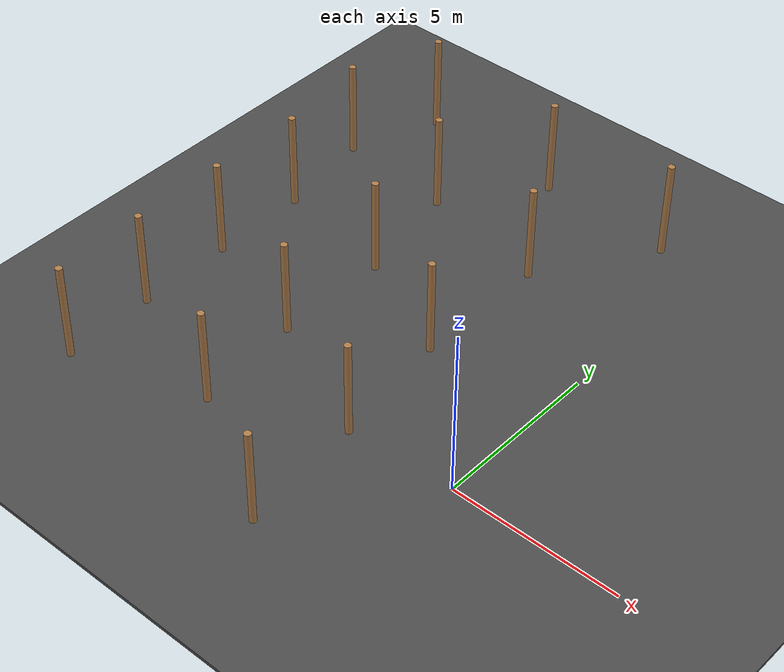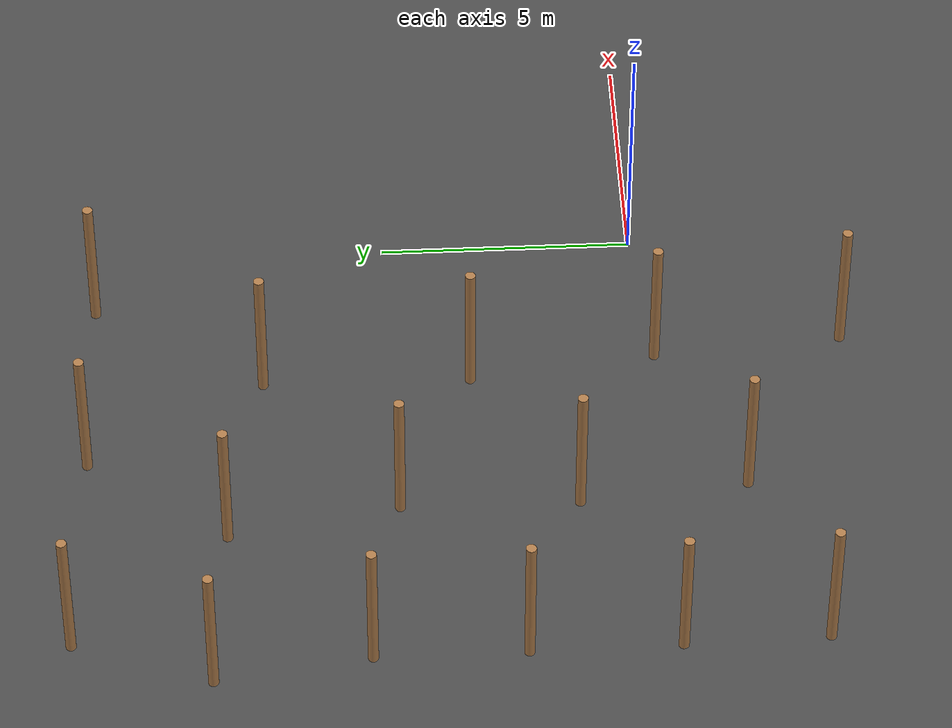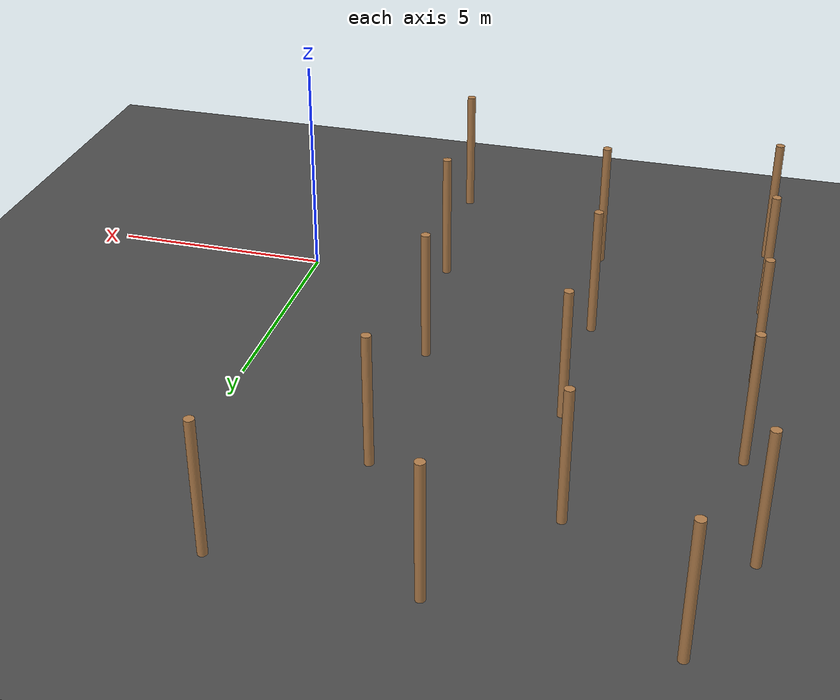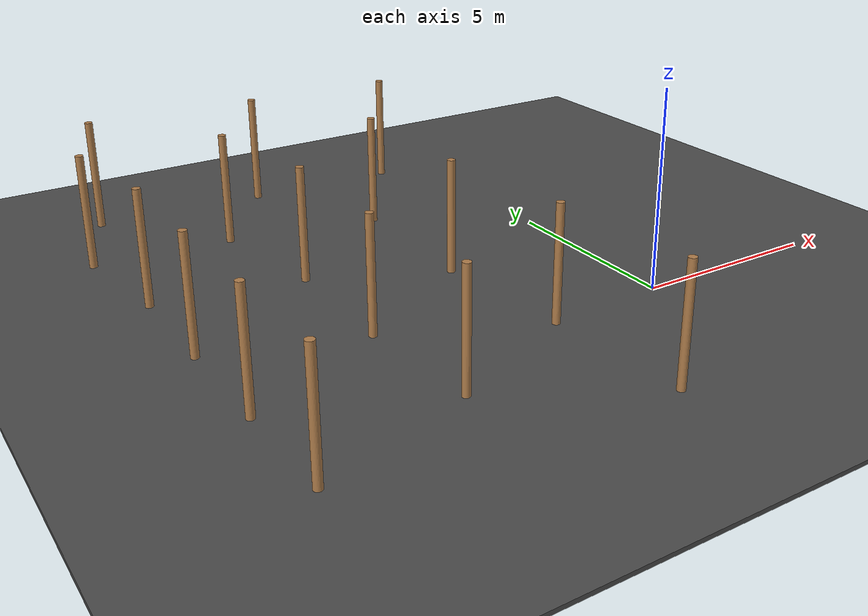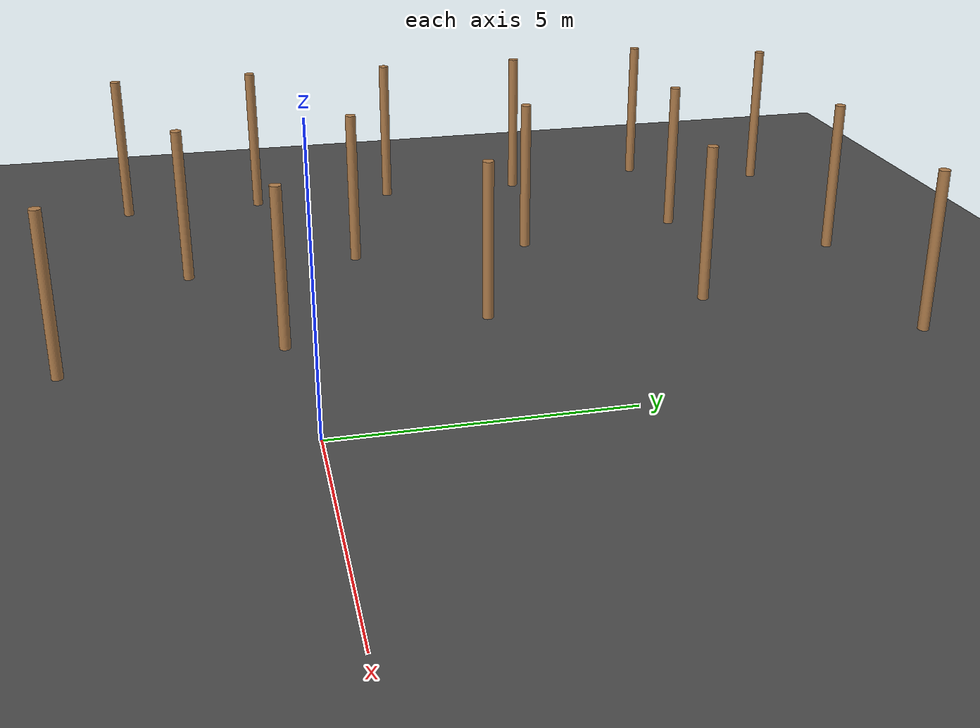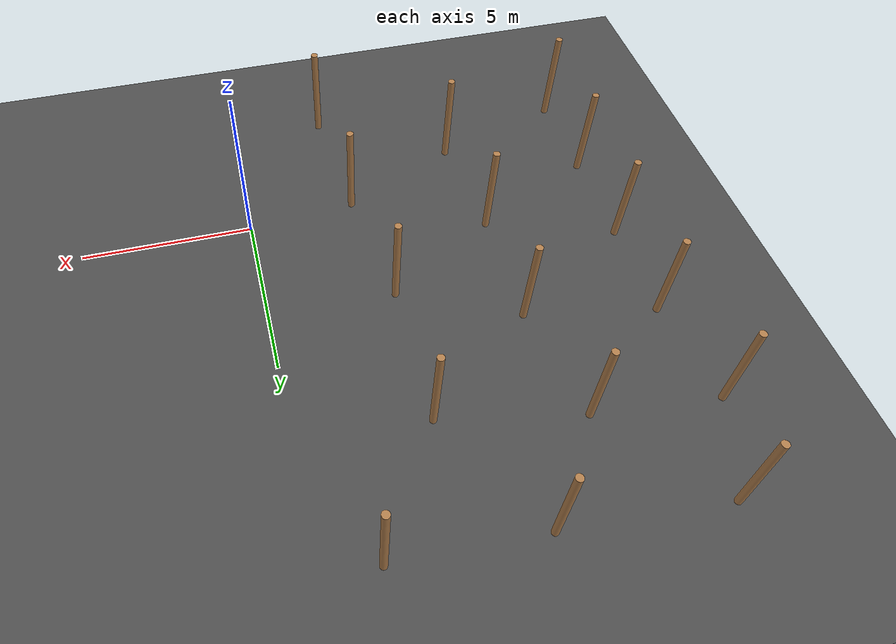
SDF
<sdf version="1.6">
 <world name="default">
  <include><uri>model://ground_plane</uri></include>
  <model name="asphalt_plane">
   <static>1</static>
   <link name="link">
    <collision name="collision"><geometry><box><size>42.4866 44.6464 0.1</size></box></geometry></collision>
    <visual name="visual">
     <cast_shadows>0</cast_shadows>
     <geometry><box><size>42.4866 44.6464 0.1</size></box></geometry>
     <material>
      <script>
       <uri>model://asphalt_plane/materials/scripts</uri>
       <uri>model://asphalt_plane/materials/textures</uri>
       <name>vrc/asphalt</name>
      </script>
     </material>
    </visual>
   </link>
  </model>
  <model name="wooden_cylinder1_clone_0">
   <pose>-11.0868 8.52775 -6.1e-05 0 -0 0</pose>
   <link name="wooden_cylinder::link_0">
    <pose>0 0 1.5 0 -0 0</pose>
    <inertial>
     <mass>1</mass>
     <inertia><ixx>0.145833</ixx><ixy>0</ixy><ixz>0</ixz><iyy>0.145833</iyy><iyz>0</iyz><izz>0.125</izz></inertia>
    </inertial>
    <visual name="visual">
     <geometry><cylinder><radius>0.1</radius><length>3</length></cylinder></geometry>
     <material>
      <lighting>1</lighting>
      <script><uri>file://media/materials/scripts/gazebo.material</uri><name>Gazebo/Wood</name></script>
      <ambient>0.3 0.3 0.3 1</ambient>
      <diffuse>0.7 0.7 0.7 1</diffuse>
      <specular>0.01 0.01 0.01 1</specular>
      <emissive>0 0 0 1</emissive>
      <shader type="vertex"><normal_map>__default__</normal_map></shader>
     </material>
    </visual>
    <collision name="collision">
     <geometry><cylinder><radius>0.1</radius><length>3</length></cylinder></geometry>
     <surface>
      <friction>
       <ode><mu>1</mu><mu2>1</mu2><fdir1>0 0 0</fdir1><slip1>0</slip1><slip2>0</slip2></ode>
       <torsional>
        <coefficient>1</coefficient>
        <patch_radius>0</patch_radius>
        <surface_radius>0</surface_radius>
        <use_patch_radius>1</use_patch_radius>
        <ode><slip>0</slip></ode>
       </torsional>
      </friction>
      <bounce><restitution_coefficient>0</restitution_coefficient><threshold>1e+06</threshold></bounce>
      <contact>
       <collide_without_contact>0</collide_without_contact>
       <collide_without_contact_bitmask>1</collide_without_contact_bitmask>
       <collide_bitmask>1</collide_bitmask>
       <ode>
        <soft_cfm>0</soft_cfm>
        <soft_erp>0.2</soft_erp>
        <kp>1e+13</kp>
        <kd>1</kd>
        <max_vel>0.01</max_vel>
        <min_depth>0</min_depth>
       </ode>
       <bullet>
        <split_impulse>1</split_impulse>
        <split_impulse_penetration_threshold>-0.01</split_impulse_penetration_threshold>
        <soft_cfm>0</soft_cfm>
        <soft_erp>0.2</soft_erp>
        <kp>1e+13</kp>
        <kd>1</kd>
       </bullet>
      </contact>
     </surface>
    </collision>
   </link>
   <static>1</static>
  </model>
  <model name="wooden_cylinder1_clone_1">
   <pose>-10.642 2.62246 -6.3e-05 0 -0 0</pose>
   <link name="wooden_cylinder::link_0">
    <pose>0 0 1.5 0 -0 0</pose>
    <inertial>
     <mass>1</mass>
     <inertia><ixx>0.145833</ixx><ixy>0</ixy><ixz>0</ixz><iyy>0.145833</iyy><iyz>0</iyz><izz>0.125</izz></inertia>
    </inertial>
    <visual name="visual">
     <geometry><cylinder><radius>0.1</radius><length>3</length></cylinder></geometry>
     <material>
      <lighting>1</lighting>
      <script><uri>file://media/materials/scripts/gazebo.material</uri><name>Gazebo/Wood</name></script>
      <ambient>0.3 0.3 0.3 1</ambient>
      <diffuse>0.7 0.7 0.7 1</diffuse>
      <specular>0.01 0.01 0.01 1</specular>
      <emissive>0 0 0 1</emissive>
      <shader type="vertex"><normal_map>__default__</normal_map></shader>
     </material>
    </visual>
    <collision name="collision">
     <geometry><cylinder><radius>0.1</radius><length>3</length></cylinder></geometry>
     <surface>
      <friction>
       <ode><mu>1</mu><mu2>1</mu2><fdir1>0 0 0</fdir1><slip1>0</slip1><slip2>0</slip2></ode>
       <torsional>
        <coefficient>1</coefficient>
        <patch_radius>0</patch_radius>
        <surface_radius>0</surface_radius>
        <use_patch_radius>1</use_patch_radius>
        <ode><slip>0</slip></ode>
       </torsional>
      </friction>
      <bounce><restitution_coefficient>0</restitution_coefficient><threshold>1e+06</threshold></bounce>
      <contact>
       <collide_without_contact>0</collide_without_contact>
       <collide_without_contact_bitmask>1</collide_without_contact_bitmask>
       <collide_bitmask>1</collide_bitmask>
       <ode>
        <soft_cfm>0</soft_cfm>
        <soft_erp>0.2</soft_erp>
        <kp>1e+13</kp>
        <kd>1</kd>
        <max_vel>0.01</max_vel>
        <min_depth>0</min_depth>
       </ode>
       <bullet>
        <split_impulse>1</split_impulse>
        <split_impulse_penetration_threshold>-0.01</split_impulse_penetration_threshold>
        <soft_cfm>0</soft_cfm>
        <soft_erp>0.2</soft_erp>
        <kp>1e+13</kp>
        <kd>1</kd>
       </bullet>
      </contact>
     </surface>
    </collision>
   </link>
   <static>1</static>
  </model>
  <model name="wooden_cylinder1_clone_2">
   <pose>-10.6472 5.54644 0.000201 0 -0 0</pose>
   <link name="wooden_cylinder::link_0">
    <pose>0 0 1.5 0 -0 0</pose>
    <inertial>
     <mass>1</mass>
     <inertia><ixx>0.145833</ixx><ixy>0</ixy><ixz>0</ixz><iyy>0.145833</iyy><iyz>0</iyz><izz>0.125</izz></inertia>
    </inertial>
    <visual name="visual">
     <geometry><cylinder><radius>0.1</radius><length>3</length></cylinder></geometry>
     <material>
      <lighting>1</lighting>
      <script><uri>file://media/materials/scripts/gazebo.material</uri><name>Gazebo/Wood</name></script>
      <ambient>0.3 0.3 0.3 1</ambient>
      <diffuse>0.7 0.7 0.7 1</diffuse>
      <specular>0.01 0.01 0.01 1</specular>
      <emissive>0 0 0 1</emissive>
      <shader type="vertex"><normal_map>__default__</normal_map></shader>
     </material>
    </visual>
    <collision name="collision">
     <geometry><cylinder><radius>0.1</radius><length>3</length></cylinder></geometry>
     <surface>
      <friction>
       <ode><mu>1</mu><mu2>1</mu2><fdir1>0 0 0</fdir1><slip1>0</slip1><slip2>0</slip2></ode>
       <torsional>
        <coefficient>1</coefficient>
        <patch_radius>0</patch_radius>
        <surface_radius>0</surface_radius>
        <use_patch_radius>1</use_patch_radius>
        <ode><slip>0</slip></ode>
       </torsional>
      </friction>
      <bounce><restitution_coefficient>0</restitution_coefficient><threshold>1e+06</threshold></bounce>
      <contact>
       <collide_without_contact>0</collide_without_contact>
       <collide_without_contact_bitmask>1</collide_without_contact_bitmask>
       <collide_bitmask>1</collide_bitmask>
       <ode>
        <soft_cfm>0</soft_cfm>
        <soft_erp>0.2</soft_erp>
        <kp>1e+13</kp>
        <kd>1</kd>
        <max_vel>0.01</max_vel>
        <min_depth>0</min_depth>
       </ode>
       <bullet>
        <split_impulse>1</split_impulse>
        <split_impulse_penetration_threshold>-0.01</split_impulse_penetration_threshold>
        <soft_cfm>0</soft_cfm>
        <soft_erp>0.2</soft_erp>
        <kp>1e+13</kp>
        <kd>1</kd>
       </bullet>
      </contact>
     </surface>
    </collision>
   </link>
   <static>1</static>
  </model>
  <model name="wooden_cylinder1_clone_3">
   <pose>-10.5388 -3.0463 -0.000137 0 -0 0</pose>
   <link name="wooden_cylinder::link_0">
    <pose>0 0 1.5 0 -0 0</pose>
    <inertial>
     <mass>1</mass>
     <inertia><ixx>0.145833</ixx><ixy>0</ixy><ixz>0</ixz><iyy>0.145833</iyy><iyz>0</iyz><izz>0.125</izz></inertia>
    </inertial>
    <visual name="visual">
     <geometry><cylinder><radius>0.1</radius><length>3</length></cylinder></geometry>
     <material>
      <lighting>1</lighting>
      <script><uri>file://media/materials/scripts/gazebo.material</uri><name>Gazebo/Wood</name></script>
      <ambient>0.3 0.3 0.3 1</ambient>
      <diffuse>0.7 0.7 0.7 1</diffuse>
      <specular>0.01 0.01 0.01 1</specular>
      <emissive>0 0 0 1</emissive>
      <shader type="vertex"><normal_map>__default__</normal_map></shader>
     </material>
    </visual>
    <collision name="collision">
     <geometry><cylinder><radius>0.1</radius><length>3</length></cylinder></geometry>
     <surface>
      <friction>
       <ode><mu>1</mu><mu2>1</mu2><fdir1>0 0 0</fdir1><slip1>0</slip1><slip2>0</slip2></ode>
       <torsional>
        <coefficient>1</coefficient>
        <patch_radius>0</patch_radius>
        <surface_radius>0</surface_radius>
        <use_patch_radius>1</use_patch_radius>
        <ode><slip>0</slip></ode>
       </torsional>
      </friction>
      <bounce><restitution_coefficient>0</restitution_coefficient><threshold>1e+06</threshold></bounce>
      <contact>
       <collide_without_contact>0</collide_without_contact>
       <collide_without_contact_bitmask>1</collide_without_contact_bitmask>
       <collide_bitmask>1</collide_bitmask>
       <ode>
        <soft_cfm>0</soft_cfm>
        <soft_erp>0.2</soft_erp>
        <kp>1e+13</kp>
        <kd>1</kd>
        <max_vel>0.01</max_vel>
        <min_depth>0</min_depth>
       </ode>
       <bullet>
        <split_impulse>1</split_impulse>
        <split_impulse_penetration_threshold>-0.01</split_impulse_penetration_threshold>
        <soft_cfm>0</soft_cfm>
        <soft_erp>0.2</soft_erp>
        <kp>1e+13</kp>
        <kd>1</kd>
       </bullet>
      </contact>
     </surface>
    </collision>
   </link>
   <static>1</static>
  </model>
  <model name="wooden_cylinder1_clone_4">
   <pose>-10.6103 -0.27054 0.000102 0 -0 0</pose>
   <link name="wooden_cylinder::link_0">
    <pose>0 0 1.5 0 -0 0</pose>
    <inertial>
     <mass>1</mass>
     <inertia><ixx>0.145833</ixx><ixy>0</ixy><ixz>0</ixz><iyy>0.145833</iyy><iyz>0</iyz><izz>0.125</izz></inertia>
    </inertial>
    <visual name="visual">
     <geometry><cylinder><radius>0.1</radius><length>3</length></cylinder></geometry>
     <material>
      <lighting>1</lighting>
      <script><uri>file://media/materials/scripts/gazebo.material</uri><name>Gazebo/Wood</name></script>
      <ambient>0.3 0.3 0.3 1</ambient>
      <diffuse>0.7 0.7 0.7 1</diffuse>
      <specular>0.01 0.01 0.01 1</specular>
      <emissive>0 0 0 1</emissive>
      <shader type="vertex"><normal_map>__default__</normal_map></shader>
     </material>
    </visual>
    <collision name="collision">
     <geometry><cylinder><radius>0.1</radius><length>3</length></cylinder></geometry>
     <surface>
      <friction>
       <ode><mu>1</mu><mu2>1</mu2><fdir1>0 0 0</fdir1><slip1>0</slip1><slip2>0</slip2></ode>
       <torsional>
        <coefficient>1</coefficient>
        <patch_radius>0</patch_radius>
        <surface_radius>0</surface_radius>
        <use_patch_radius>1</use_patch_radius>
        <ode><slip>0</slip></ode>
       </torsional>
      </friction>
      <bounce><restitution_coefficient>0</restitution_coefficient><threshold>1e+06</threshold></bounce>
      <contact>
       <collide_without_contact>0</collide_without_contact>
       <collide_without_contact_bitmask>1</collide_without_contact_bitmask>
       <collide_bitmask>1</collide_bitmask>
       <ode>
        <soft_cfm>0</soft_cfm>
        <soft_erp>0.2</soft_erp>
        <kp>1e+13</kp>
        <kd>1</kd>
        <max_vel>0.01</max_vel>
        <min_depth>0</min_depth>
       </ode>
       <bullet>
        <split_impulse>1</split_impulse>
        <split_impulse_penetration_threshold>-0.01</split_impulse_penetration_threshold>
        <soft_cfm>0</soft_cfm>
        <soft_erp>0.2</soft_erp>
        <kp>1e+13</kp>
        <kd>1</kd>
       </bullet>
      </contact>
     </surface>
    </collision>
   </link>
   <static>1</static>
  </model>
  <model name="wooden_cylinder1_clone_5">
   <pose>-6.96669 1.43108 4.6e-05 0 -0 0</pose>
   <link name="wooden_cylinder::link_0">
    <pose>0 0 1.5 0 -0 0</pose>
    <inertial>
     <mass>1</mass>
     <inertia><ixx>0.145833</ixx><ixy>0</ixy><ixz>0</ixz><iyy>0.145833</iyy><iyz>0</iyz><izz>0.125</izz></inertia>
    </inertial>
    <visual name="visual">
     <geometry><cylinder><radius>0.1</radius><length>3</length></cylinder></geometry>
     <material>
      <lighting>1</lighting>
      <script><uri>file://media/materials/scripts/gazebo.material</uri><name>Gazebo/Wood</name></script>
      <ambient>0.3 0.3 0.3 1</ambient>
      <diffuse>0.7 0.7 0.7 1</diffuse>
      <specular>0.01 0.01 0.01 1</specular>
      <emissive>0 0 0 1</emissive>
      <shader type="vertex"><normal_map>__default__</normal_map></shader>
     </material>
    </visual>
    <collision name="collision">
     <geometry><cylinder><radius>0.1</radius><length>3</length></cylinder></geometry>
     <surface>
      <friction>
       <ode><mu>1</mu><mu2>1</mu2><fdir1>0 0 0</fdir1><slip1>0</slip1><slip2>0</slip2></ode>
       <torsional>
        <coefficient>1</coefficient>
        <patch_radius>0</patch_radius>
        <surface_radius>0</surface_radius>
        <use_patch_radius>1</use_patch_radius>
        <ode><slip>0</slip></ode>
       </torsional>
      </friction>
      <bounce><restitution_coefficient>0</restitution_coefficient><threshold>1e+06</threshold></bounce>
      <contact>
       <collide_without_contact>0</collide_without_contact>
       <collide_without_contact_bitmask>1</collide_without_contact_bitmask>
       <collide_bitmask>1</collide_bitmask>
       <ode>
        <soft_cfm>0</soft_cfm>
        <soft_erp>0.2</soft_erp>
        <kp>1e+13</kp>
        <kd>1</kd>
        <max_vel>0.01</max_vel>
        <min_depth>0</min_depth>
       </ode>
       <bullet>
        <split_impulse>1</split_impulse>
        <split_impulse_penetration_threshold>-0.01</split_impulse_penetration_threshold>
        <soft_cfm>0</soft_cfm>
        <soft_erp>0.2</soft_erp>
        <kp>1e+13</kp>
        <kd>1</kd>
       </bullet>
      </contact>
     </surface>
    </collision>
   </link>
   <static>1</static>
  </model>
  <model name="wooden_cylinder1_clone_8">
   <pose>-6.64365 -1.83606 1e-06 0 -0 0</pose>
   <link name="wooden_cylinder::link_0">
    <pose>0 0 1.5 0 -0 0</pose>
    <inertial>
     <mass>1</mass>
     <inertia><ixx>0.145833</ixx><ixy>0</ixy><ixz>0</ixz><iyy>0.145833</iyy><iyz>0</iyz><izz>0.125</izz></inertia>
    </inertial>
    <visual name="visual">
     <geometry><cylinder><radius>0.1</radius><length>3</length></cylinder></geometry>
     <material>
      <lighting>1</lighting>
      <script><uri>file://media/materials/scripts/gazebo.material</uri><name>Gazebo/Wood</name></script>
      <ambient>0.3 0.3 0.3 1</ambient>
      <diffuse>0.7 0.7 0.7 1</diffuse>
      <specular>0.01 0.01 0.01 1</specular>
      <emissive>0 0 0 1</emissive>
      <shader type="vertex"><normal_map>__default__</normal_map></shader>
     </material>
    </visual>
    <collision name="collision">
     <geometry><cylinder><radius>0.1</radius><length>3</length></cylinder></geometry>
     <surface>
      <friction>
       <ode><mu>1</mu><mu2>1</mu2><fdir1>0 0 0</fdir1><slip1>0</slip1><slip2>0</slip2></ode>
       <torsional>
        <coefficient>1</coefficient>
        <patch_radius>0</patch_radius>
        <surface_radius>0</surface_radius>
        <use_patch_radius>1</use_patch_radius>
        <ode><slip>0</slip></ode>
       </torsional>
      </friction>
      <bounce><restitution_coefficient>0</restitution_coefficient><threshold>1e+06</threshold></bounce>
      <contact>
       <collide_without_contact>0</collide_without_contact>
       <collide_without_contact_bitmask>1</collide_without_contact_bitmask>
       <collide_bitmask>1</collide_bitmask>
       <ode>
        <soft_cfm>0</soft_cfm>
        <soft_erp>0.2</soft_erp>
        <kp>1e+13</kp>
        <kd>1</kd>
        <max_vel>0.01</max_vel>
        <min_depth>0</min_depth>
       </ode>
       <bullet>
        <split_impulse>1</split_impulse>
        <split_impulse_penetration_threshold>-0.01</split_impulse_penetration_threshold>
        <soft_cfm>0</soft_cfm>
        <soft_erp>0.2</soft_erp>
        <kp>1e+13</kp>
        <kd>1</kd>
       </bullet>
      </contact>
     </surface>
    </collision>
   </link>
   <static>1</static>
  </model>
  <model name="wooden_cylinder1_clone_9">
   <pose>-3.17556 -0.278555 4.8e-05 0 -0 0</pose>
   <link name="wooden_cylinder::link_0">
    <pose>0 0 1.5 0 -0 0</pose>
    <inertial>
     <mass>1</mass>
     <inertia><ixx>0.145833</ixx><ixy>0</ixy><ixz>0</ixz><iyy>0.145833</iyy><iyz>0</iyz><izz>0.125</izz></inertia>
    </inertial>
    <visual name="visual">
     <geometry><cylinder><radius>0.1</radius><length>3</length></cylinder></geometry>
     <material>
      <lighting>1</lighting>
      <script><uri>file://media/materials/scripts/gazebo.material</uri><name>Gazebo/Wood</name></script>
      <ambient>0.3 0.3 0.3 1</ambient>
      <diffuse>0.7 0.7 0.7 1</diffuse>
      <specular>0.01 0.01 0.01 1</specular>
      <emissive>0 0 0 1</emissive>
      <shader type="vertex"><normal_map>__default__</normal_map></shader>
     </material>
    </visual>
    <collision name="collision">
     <geometry><cylinder><radius>0.1</radius><length>3</length></cylinder></geometry>
     <surface>
      <friction>
       <ode><mu>1</mu><mu2>1</mu2><fdir1>0 0 0</fdir1><slip1>0</slip1><slip2>0</slip2></ode>
       <torsional>
        <coefficient>1</coefficient>
        <patch_radius>0</patch_radius>
        <surface_radius>0</surface_radius>
        <use_patch_radius>1</use_patch_radius>
        <ode><slip>0</slip></ode>
       </torsional>
      </friction>
      <bounce><restitution_coefficient>0</restitution_coefficient><threshold>1e+06</threshold></bounce>
      <contact>
       <collide_without_contact>0</collide_without_contact>
       <collide_without_contact_bitmask>1</collide_without_contact_bitmask>
       <collide_bitmask>1</collide_bitmask>
       <ode>
        <soft_cfm>0</soft_cfm>
        <soft_erp>0.2</soft_erp>
        <kp>1e+13</kp>
        <kd>1</kd>
        <max_vel>0.01</max_vel>
        <min_depth>0</min_depth>
       </ode>
       <bullet>
        <split_impulse>1</split_impulse>
        <split_impulse_penetration_threshold>-0.01</split_impulse_penetration_threshold>
        <soft_cfm>0</soft_cfm>
        <soft_erp>0.2</soft_erp>
        <kp>1e+13</kp>
        <kd>1</kd>
       </bullet>
      </contact>
     </surface>
    </collision>
   </link>
   <static>1</static>
  </model>
  <model name="wooden_cylinder1_clone_22">
   <pose>-2.86149 -4 -3.4e-05 0 -0 0</pose>
   <link name="wooden_cylinder::link_0">
    <pose>0 0 1.5 0 -0 0</pose>
    <inertial>
     <mass>1</mass>
     <inertia><ixx>0.145833</ixx><ixy>0</ixy><ixz>0</ixz><iyy>0.145833</iyy><iyz>0</iyz><izz>0.125</izz></inertia>
    </inertial>
    <visual name="visual">
     <geometry><cylinder><radius>0.1</radius><length>3</length></cylinder></geometry>
     <material>
      <lighting>1</lighting>
      <script><uri>file://media/materials/scripts/gazebo.material</uri><name>Gazebo/Wood</name></script>
      <ambient>0.3 0.3 0.3 1</ambient>
      <diffuse>0.7 0.7 0.7 1</diffuse>
      <specular>0.01 0.01 0.01 1</specular>
      <emissive>0 0 0 1</emissive>
      <shader type="vertex"><normal_map>__default__</normal_map></shader>
     </material>
    </visual>
    <collision name="collision">
     <geometry><cylinder><radius>0.1</radius><length>3</length></cylinder></geometry>
     <surface>
      <friction>
       <ode><mu>1</mu><mu2>1</mu2><fdir1>0 0 0</fdir1><slip1>0</slip1><slip2>0</slip2></ode>
       <torsional>
        <coefficient>1</coefficient>
        <patch_radius>0</patch_radius>
        <surface_radius>0</surface_radius>
        <use_patch_radius>1</use_patch_radius>
        <ode><slip>0</slip></ode>
       </torsional>
      </friction>
      <bounce><restitution_coefficient>0</restitution_coefficient><threshold>1e+06</threshold></bounce>
      <contact>
       <collide_without_contact>0</collide_without_contact>
       <collide_without_contact_bitmask>1</collide_without_contact_bitmask>
       <collide_bitmask>1</collide_bitmask>
       <ode>
        <soft_cfm>0</soft_cfm>
        <soft_erp>0.2</soft_erp>
        <kp>1e+13</kp>
        <kd>1</kd>
        <max_vel>0.01</max_vel>
        <min_depth>0</min_depth>
       </ode>
       <bullet>
        <split_impulse>1</split_impulse>
        <split_impulse_penetration_threshold>-0.01</split_impulse_penetration_threshold>
        <soft_cfm>0</soft_cfm>
        <soft_erp>0.2</soft_erp>
        <kp>1e+13</kp>
        <kd>1</kd>
       </bullet>
      </contact>
     </surface>
    </collision>
   </link>
   <static>1</static>
  </model>
  <model name="wooden_cylinder1_clone_27">
   <pose>-3.64792 3.38842 4.1e-05 0 -0 0</pose>
   <link name="wooden_cylinder::link_0">
    <pose>0 0 1.5 0 -0 0</pose>
    <inertial>
     <mass>1</mass>
     <inertia><ixx>0.145833</ixx><ixy>0</ixy><ixz>0</ixz><iyy>0.145833</iyy><iyz>0</iyz><izz>0.125</izz></inertia>
    </inertial>
    <visual name="visual">
     <geometry><cylinder><radius>0.1</radius><length>3</length></cylinder></geometry>
     <material>
      <lighting>1</lighting>
      <script><uri>file://media/materials/scripts/gazebo.material</uri><name>Gazebo/Wood</name></script>
      <ambient>0.3 0.3 0.3 1</ambient>
      <diffuse>0.7 0.7 0.7 1</diffuse>
      <specular>0.01 0.01 0.01 1</specular>
      <emissive>0 0 0 1</emissive>
      <shader type="vertex"><normal_map>__default__</normal_map></shader>
     </material>
    </visual>
    <collision name="collision">
     <geometry><cylinder><radius>0.1</radius><length>3</length></cylinder></geometry>
     <surface>
      <friction>
       <ode><mu>1</mu><mu2>1</mu2><fdir1>0 0 0</fdir1><slip1>0</slip1><slip2>0</slip2></ode>
       <torsional>
        <coefficient>1</coefficient>
        <patch_radius>0</patch_radius>
        <surface_radius>0</surface_radius>
        <use_patch_radius>1</use_patch_radius>
        <ode><slip>0</slip></ode>
       </torsional>
      </friction>
      <bounce><restitution_coefficient>0</restitution_coefficient><threshold>1e+06</threshold></bounce>
      <contact>
       <collide_without_contact>0</collide_without_contact>
       <collide_without_contact_bitmask>1</collide_without_contact_bitmask>
       <collide_bitmask>1</collide_bitmask>
       <ode>
        <soft_cfm>0</soft_cfm>
        <soft_erp>0.2</soft_erp>
        <kp>1e+13</kp>
        <kd>1</kd>
        <max_vel>0.01</max_vel>
        <min_depth>0</min_depth>
       </ode>
       <bullet>
        <split_impulse>1</split_impulse>
        <split_impulse_penetration_threshold>-0.01</split_impulse_penetration_threshold>
        <soft_cfm>0</soft_cfm>
        <soft_erp>0.2</soft_erp>
        <kp>1e+13</kp>
        <kd>1</kd>
       </bullet>
      </contact>
     </surface>
    </collision>
   </link>
   <static>1</static>
  </model>
  <model name="wooden_cylinder1_clone_29">
   <pose>-6.93659 4.8959 2e-05 0 -0 0</pose>
   <link name="wooden_cylinder::link_0">
    <pose>0 0 1.5 0 -0 0</pose>
    <inertial>
     <mass>1</mass>
     <inertia><ixx>0.145833</ixx><ixy>0</ixy><ixz>0</ixz><iyy>0.145833</iyy><iyz>0</iyz><izz>0.125</izz></inertia>
    </inertial>
    <visual name="visual">
     <geometry><cylinder><radius>0.1</radius><length>3</length></cylinder></geometry>
     <material>
      <lighting>1</lighting>
      <script><uri>file://media/materials/scripts/gazebo.material</uri><name>Gazebo/Wood</name></script>
      <ambient>0.3 0.3 0.3 1</ambient>
      <diffuse>0.7 0.7 0.7 1</diffuse>
      <specular>0.01 0.01 0.01 1</specular>
      <emissive>0 0 0 1</emissive>
      <shader type="vertex"><normal_map>__default__</normal_map></shader>
     </material>
    </visual>
    <collision name="collision">
     <geometry><cylinder><radius>0.1</radius><length>3</length></cylinder></geometry>
     <surface>
      <friction>
       <ode><mu>1</mu><mu2>1</mu2><fdir1>0 0 0</fdir1><slip1>0</slip1><slip2>0</slip2></ode>
       <torsional>
        <coefficient>1</coefficient>
        <patch_radius>0</patch_radius>
        <surface_radius>0</surface_radius>
        <use_patch_radius>1</use_patch_radius>
        <ode><slip>0</slip></ode>
       </torsional>
      </friction>
      <bounce><restitution_coefficient>0</restitution_coefficient><threshold>1e+06</threshold></bounce>
      <contact>
       <collide_without_contact>0</collide_without_contact>
       <collide_without_contact_bitmask>1</collide_without_contact_bitmask>
       <collide_bitmask>1</collide_bitmask>
       <ode>
        <soft_cfm>0</soft_cfm>
        <soft_erp>0.2</soft_erp>
        <kp>1e+13</kp>
        <kd>1</kd>
        <max_vel>0.01</max_vel>
        <min_depth>0</min_depth>
       </ode>
       <bullet>
        <split_impulse>1</split_impulse>
        <split_impulse_penetration_threshold>-0.01</split_impulse_penetration_threshold>
        <soft_cfm>0</soft_cfm>
        <soft_erp>0.2</soft_erp>
        <kp>1e+13</kp>
        <kd>1</kd>
       </bullet>
      </contact>
     </surface>
    </collision>
   </link>
   <static>1</static>
  </model>
  <model name="wooden_cylinder1_clone_31">
   <pose>-7.54136 8.21907 -8.2e-05 0 -0 0</pose>
   <link name="wooden_cylinder::link_0">
    <pose>0 0 1.5 0 -0 0</pose>
    <inertial>
     <mass>1</mass>
     <inertia><ixx>0.145833</ixx><ixy>0</ixy><ixz>0</ixz><iyy>0.145833</iyy><iyz>0</iyz><izz>0.125</izz></inertia>
    </inertial>
    <visual name="visual">
     <geometry><cylinder><radius>0.1</radius><length>3</length></cylinder></geometry>
     <material>
      <lighting>1</lighting>
      <script><uri>file://media/materials/scripts/gazebo.material</uri><name>Gazebo/Wood</name></script>
      <ambient>0.3 0.3 0.3 1</ambient>
      <diffuse>0.7 0.7 0.7 1</diffuse>
      <specular>0.01 0.01 0.01 1</specular>
      <emissive>0 0 0 1</emissive>
      <shader type="vertex"><normal_map>__default__</normal_map></shader>
     </material>
    </visual>
    <collision name="collision">
     <geometry><cylinder><radius>0.1</radius><length>3</length></cylinder></geometry>
     <surface>
      <friction>
       <ode><mu>1</mu><mu2>1</mu2><fdir1>0 0 0</fdir1><slip1>0</slip1><slip2>0</slip2></ode>
       <torsional>
        <coefficient>1</coefficient>
        <patch_radius>0</patch_radius>
        <surface_radius>0</surface_radius>
        <use_patch_radius>1</use_patch_radius>
        <ode><slip>0</slip></ode>
       </torsional>
      </friction>
      <bounce><restitution_coefficient>0</restitution_coefficient><threshold>1e+06</threshold></bounce>
      <contact>
       <collide_without_contact>0</collide_without_contact>
       <collide_without_contact_bitmask>1</collide_without_contact_bitmask>
       <collide_bitmask>1</collide_bitmask>
       <ode>
        <soft_cfm>0</soft_cfm>
        <soft_erp>0.2</soft_erp>
        <kp>1e+13</kp>
        <kd>1</kd>
        <max_vel>0.01</max_vel>
        <min_depth>0</min_depth>
       </ode>
       <bullet>
        <split_impulse>1</split_impulse>
        <split_impulse_penetration_threshold>-0.01</split_impulse_penetration_threshold>
        <soft_cfm>0</soft_cfm>
        <soft_erp>0.2</soft_erp>
        <kp>1e+13</kp>
        <kd>1</kd>
       </bullet>
      </contact>
     </surface>
    </collision>
   </link>
   <static>1</static>
  </model>
  <model name="wooden_cylinder1_clone_33">
   <pose>-3.60261 7.46972 3.2e-05 0 -0 0</pose>
   <link name="wooden_cylinder::link_0">
    <pose>0 0 1.5 0 -0 0</pose>
    <inertial>
     <mass>1</mass>
     <inertia><ixx>0.145833</ixx><ixy>0</ixy><ixz>0</ixz><iyy>0.145833</iyy><iyz>0</iyz><izz>0.125</izz></inertia>
    </inertial>
    <visual name="visual">
     <geometry><cylinder><radius>0.1</radius><length>3</length></cylinder></geometry>
     <material>
      <lighting>1</lighting>
      <script><uri>file://media/materials/scripts/gazebo.material</uri><name>Gazebo/Wood</name></script>
      <ambient>0.3 0.3 0.3 1</ambient>
      <diffuse>0.7 0.7 0.7 1</diffuse>
      <specular>0.01 0.01 0.01 1</specular>
      <emissive>0 0 0 1</emissive>
      <shader type="vertex"><normal_map>__default__</normal_map></shader>
     </material>
    </visual>
    <collision name="collision">
     <geometry><cylinder><radius>0.1</radius><length>3</length></cylinder></geometry>
     <surface>
      <friction>
       <ode><mu>1</mu><mu2>1</mu2><fdir1>0 0 0</fdir1><slip1>0</slip1><slip2>0</slip2></ode>
       <torsional>
        <coefficient>1</coefficient>
        <patch_radius>0</patch_radius>
        <surface_radius>0</surface_radius>
        <use_patch_radius>1</use_patch_radius>
        <ode><slip>0</slip></ode>
       </torsional>
      </friction>
      <bounce><restitution_coefficient>0</restitution_coefficient><threshold>1e+06</threshold></bounce>
      <contact>
       <collide_without_contact>0</collide_without_contact>
       <collide_without_contact_bitmask>1</collide_without_contact_bitmask>
       <collide_bitmask>1</collide_bitmask>
       <ode>
        <soft_cfm>0</soft_cfm>
        <soft_erp>0.2</soft_erp>
        <kp>1e+13</kp>
        <kd>1</kd>
        <max_vel>0.01</max_vel>
        <min_depth>0</min_depth>
       </ode>
       <bullet>
        <split_impulse>1</split_impulse>
        <split_impulse_penetration_threshold>-0.01</split_impulse_penetration_threshold>
        <soft_cfm>0</soft_cfm>
        <soft_erp>0.2</soft_erp>
        <kp>1e+13</kp>
        <kd>1</kd>
       </bullet>
      </contact>
     </surface>
    </collision>
   </link>
   <static>1</static>
  </model>
  <model name="wooden_cylinder1_clone_36">
   <pose>-10.1014 11.1845 6.2e-05 0 -0 0</pose>
   <link name="wooden_cylinder::link_0">
    <pose>0 0 1.5 0 -0 0</pose>
    <inertial>
     <mass>1</mass>
     <inertia><ixx>0.145833</ixx><ixy>0</ixy><ixz>0</ixz><iyy>0.145833</iyy><iyz>0</iyz><izz>0.125</izz></inertia>
    </inertial>
    <visual name="visual">
     <geometry><cylinder><radius>0.1</radius><length>3</length></cylinder></geometry>
     <material>
      <lighting>1</lighting>
      <script><uri>file://media/materials/scripts/gazebo.material</uri><name>Gazebo/Wood</name></script>
      <ambient>0.3 0.3 0.3 1</ambient>
      <diffuse>0.7 0.7 0.7 1</diffuse>
      <specular>0.01 0.01 0.01 1</specular>
      <emissive>0 0 0 1</emissive>
      <shader type="vertex"><normal_map>__default__</normal_map></shader>
     </material>
    </visual>
    <collision name="collision">
     <geometry><cylinder><radius>0.1</radius><length>3</length></cylinder></geometry>
     <surface>
      <friction>
       <ode><mu>1</mu><mu2>1</mu2><fdir1>0 0 0</fdir1><slip1>0</slip1><slip2>0</slip2></ode>
       <torsional>
        <coefficient>1</coefficient>
        <patch_radius>0</patch_radius>
        <surface_radius>0</surface_radius>
        <use_patch_radius>1</use_patch_radius>
        <ode><slip>0</slip></ode>
       </torsional>
      </friction>
      <bounce><restitution_coefficient>0</restitution_coefficient><threshold>1e+06</threshold></bounce>
      <contact>
       <collide_without_contact>0</collide_without_contact>
       <collide_without_contact_bitmask>1</collide_without_contact_bitmask>
       <collide_bitmask>1</collide_bitmask>
       <ode>
        <soft_cfm>0</soft_cfm>
        <soft_erp>0.2</soft_erp>
        <kp>1e+13</kp>
        <kd>1</kd>
        <max_vel>0.01</max_vel>
        <min_depth>0</min_depth>
       </ode>
       <bullet>
        <split_impulse>1</split_impulse>
        <split_impulse_penetration_threshold>-0.01</split_impulse_penetration_threshold>
        <soft_cfm>0</soft_cfm>
        <soft_erp>0.2</soft_erp>
        <kp>1e+13</kp>
        <kd>1</kd>
       </bullet>
      </contact>
     </surface>
    </collision>
   </link>
   <static>1</static>
  </model>
  <model name="wooden_cylinder1_clone_39">
   <pose>-1.49559 10.7742 -7.7e-05 0 -0 0</pose>
   <link name="wooden_cylinder::link_0">
    <pose>0 0 1.5 0 -0 0</pose>
    <inertial>
     <mass>1</mass>
     <inertia><ixx>0.145833</ixx><ixy>0</ixy><ixz>0</ixz><iyy>0.145833</iyy><iyz>0</iyz><izz>0.125</izz></inertia>
    </inertial>
    <visual name="visual">
     <geometry><cylinder><radius>0.1</radius><length>3</length></cylinder></geometry>
     <material>
      <lighting>1</lighting>
      <script><uri>file://media/materials/scripts/gazebo.material</uri><name>Gazebo/Wood</name></script>
      <ambient>0.3 0.3 0.3 1</ambient>
      <diffuse>0.7 0.7 0.7 1</diffuse>
      <specular>0.01 0.01 0.01 1</specular>
      <emissive>0 0 0 1</emissive>
      <shader type="vertex"><normal_map>__default__</normal_map></shader>
     </material>
    </visual>
    <collision name="collision">
     <geometry><cylinder><radius>0.1</radius><length>3</length></cylinder></geometry>
     <surface>
      <friction>
       <ode><mu>1</mu><mu2>1</mu2><fdir1>0 0 0</fdir1><slip1>0</slip1><slip2>0</slip2></ode>
       <torsional>
        <coefficient>1</coefficient>
        <patch_radius>0</patch_radius>
        <surface_radius>0</surface_radius>
        <use_patch_radius>1</use_patch_radius>
        <ode><slip>0</slip></ode>
       </torsional>
      </friction>
      <bounce><restitution_coefficient>0</restitution_coefficient><threshold>1e+06</threshold></bounce>
      <contact>
       <collide_without_contact>0</collide_without_contact>
       <collide_without_contact_bitmask>1</collide_without_contact_bitmask>
       <collide_bitmask>1</collide_bitmask>
       <ode>
        <soft_cfm>0</soft_cfm>
        <soft_erp>0.2</soft_erp>
        <kp>1e+13</kp>
        <kd>1</kd>
        <max_vel>0.01</max_vel>
        <min_depth>0</min_depth>
       </ode>
       <bullet>
        <split_impulse>1</split_impulse>
        <split_impulse_penetration_threshold>-0.01</split_impulse_penetration_threshold>
        <soft_cfm>0</soft_cfm>
        <soft_erp>0.2</soft_erp>
        <kp>1e+13</kp>
        <kd>1</kd>
       </bullet>
      </contact>
     </surface>
    </collision>
   </link>
   <static>1</static>
  </model>
  <model name="wooden_cylinder1_clone_42">
   <pose>-5.57305 10.9136 5.2e-05 0 -0 0</pose>
   <link name="wooden_cylinder::link_0">
    <pose>0 0 1.5 0 -0 0</pose>
    <inertial>
     <mass>1</mass>
     <inertia><ixx>0.145833</ixx><ixy>0</ixy><ixz>0</ixz><iyy>0.145833</iyy><iyz>0</iyz><izz>0.125</izz></inertia>
    </inertial>
    <visual name="visual">
     <geometry><cylinder><radius>0.1</radius><length>3</length></cylinder></geometry>
     <material>
      <lighting>1</lighting>
      <script><uri>file://media/materials/scripts/gazebo.material</uri><name>Gazebo/Wood</name></script>
      <ambient>0.3 0.3 0.3 1</ambient>
      <diffuse>0.7 0.7 0.7 1</diffuse>
      <specular>0.01 0.01 0.01 1</specular>
      <emissive>0 0 0 1</emissive>
      <shader type="vertex"><normal_map>__default__</normal_map></shader>
     </material>
    </visual>
    <collision name="collision">
     <geometry><cylinder><radius>0.1</radius><length>3</length></cylinder></geometry>
     <surface>
      <friction>
       <ode><mu>1</mu><mu2>1</mu2><fdir1>0 0 0</fdir1><slip1>0</slip1><slip2>0</slip2></ode>
       <torsional>
        <coefficient>1</coefficient>
        <patch_radius>0</patch_radius>
        <surface_radius>0</surface_radius>
        <use_patch_radius>1</use_patch_radius>
        <ode><slip>0</slip></ode>
       </torsional>
      </friction>
      <bounce><restitution_coefficient>0</restitution_coefficient><threshold>1e+06</threshold></bounce>
      <contact>
       <collide_without_contact>0</collide_without_contact>
       <collide_without_contact_bitmask>1</collide_without_contact_bitmask>
       <collide_bitmask>1</collide_bitmask>
       <ode>
        <soft_cfm>0</soft_cfm>
        <soft_erp>0.2</soft_erp>
        <kp>1e+13</kp>
        <kd>1</kd>
        <max_vel>0.01</max_vel>
        <min_depth>0</min_depth>
       </ode>
       <bullet>
        <split_impulse>1</split_impulse>
        <split_impulse_penetration_threshold>-0.01</split_impulse_penetration_threshold>
        <soft_cfm>0</soft_cfm>
        <soft_erp>0.2</soft_erp>
        <kp>1e+13</kp>
        <kd>1</kd>
       </bullet>
      </contact>
     </surface>
    </collision>
   </link>
   <static>1</static>
  </model>
 </world>
</sdf>
